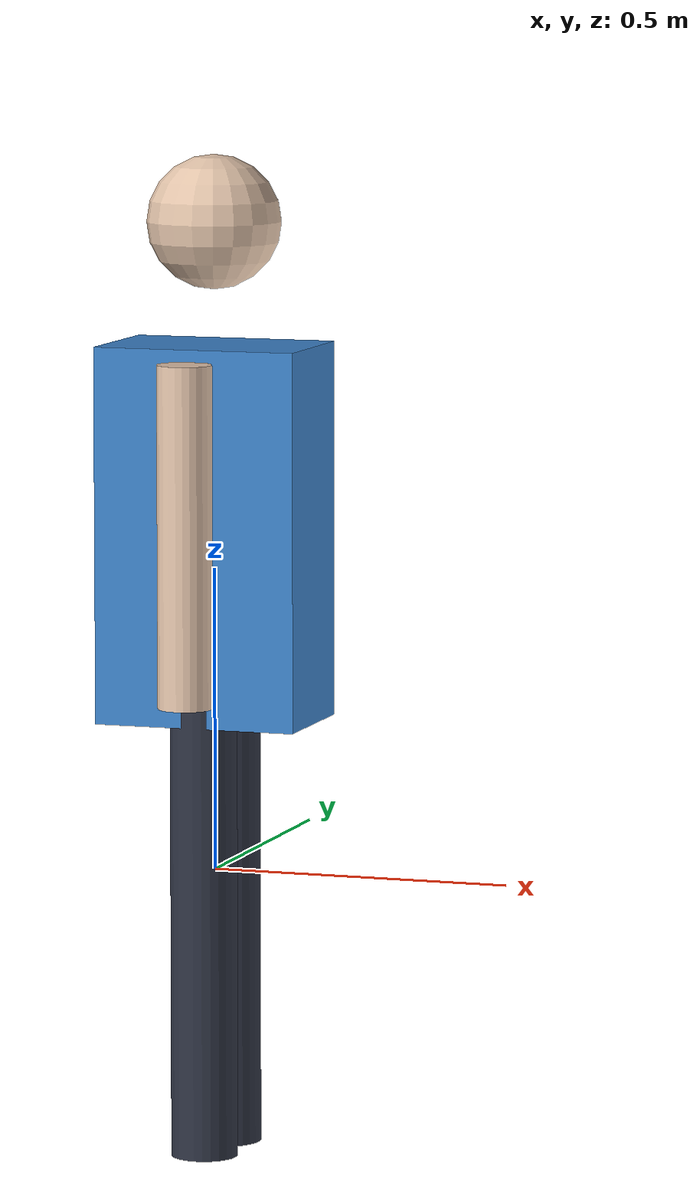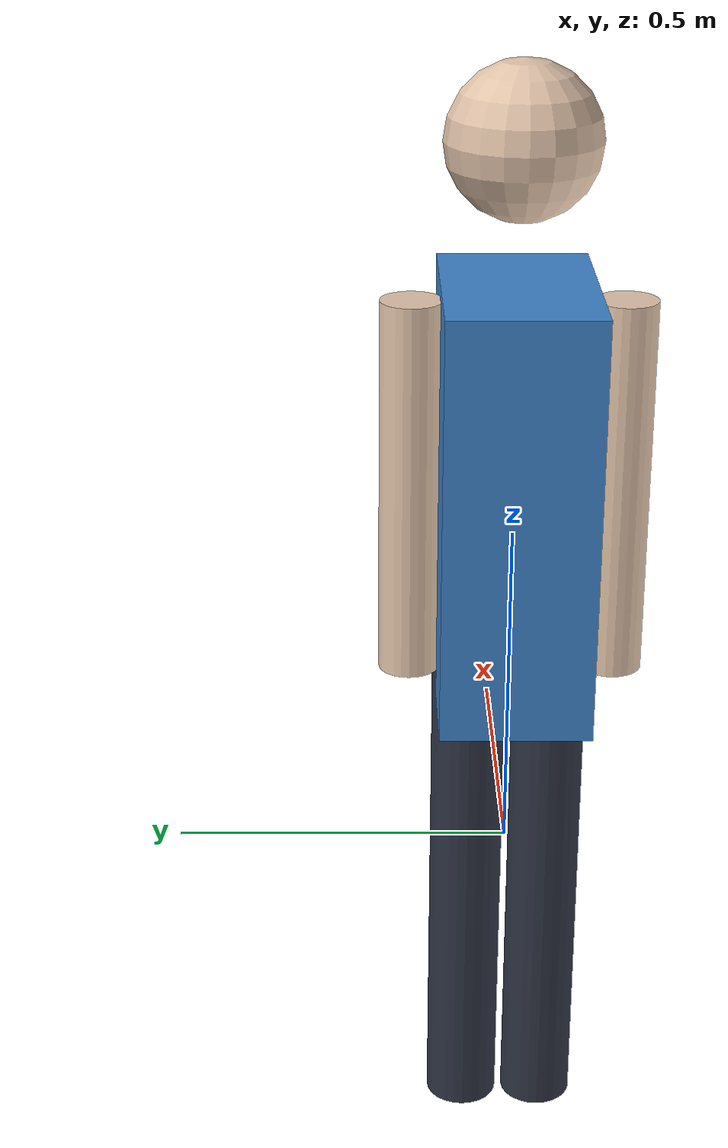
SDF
<?xml version="1.0" ?>
<sdf version="1.7">
  <model name="hmi_pedestrian">
    <pose>0 0 0 0 0 0</pose>

    <link name="torso_link">
      <gravity>false</gravity>
      <pose>0 0 0.56 0 0 0</pose>
      <inertial>
        <mass>8.0</mass>
        <inertia>
          <ixx>0.25</ixx>
          <iyy>0.20</iyy>
          <izz>0.18</izz>
          <ixy>0</ixy>
          <ixz>0</ixz>
          <iyz>0</iyz>
        </inertia>
      </inertial>
      <visual name="torso_visual">
        <geometry><box><size>0.34 0.22 0.62</size></box></geometry>
        <material><ambient>0.18 0.44 0.74 1</ambient><diffuse>0.24 0.52 0.80 1</diffuse></material>
      </visual>
    </link>

    <link name="head_link">
      <gravity>false</gravity>
      <pose>0 0 1.07 0 0 0</pose>
      <inertial>
        <mass>1.5</mass>
        <inertia>
          <ixx>0.02</ixx>
          <iyy>0.02</iyy>
          <izz>0.02</izz>
          <ixy>0</ixy>
          <ixz>0</ixz>
          <iyz>0</iyz>
        </inertia>
      </inertial>
      <visual name="head_visual">
        <geometry><sphere><radius>0.11</radius></sphere></geometry>
        <material><ambient>0.86 0.73 0.63 1</ambient><diffuse>0.90 0.78 0.68 1</diffuse></material>
      </visual>
    </link>

    <link name="left_leg_link">
      <gravity>false</gravity>
      <pose>0.00 0.06 0.29 0 0 0</pose>
      <inertial>
        <mass>2.0</mass>
        <inertia>
          <ixx>0.10</ixx>
          <iyy>0.03</iyy>
          <izz>0.10</izz>
          <ixy>0</ixy>
          <ixz>0</ixz>
          <iyz>0</iyz>
        </inertia>
      </inertial>
      <visual name="left_leg_visual">
        <pose>0 0 -0.38 0 0 0</pose>
        <geometry><cylinder><radius>0.055</radius><length>0.76</length></cylinder></geometry>
        <material><ambient>0.14 0.16 0.20 1</ambient><diffuse>0.18 0.20 0.26 1</diffuse></material>
      </visual>
    </link>

    <link name="right_leg_link">
      <gravity>false</gravity>
      <pose>0.00 -0.06 0.29 0 0 0</pose>
      <inertial>
        <mass>2.0</mass>
        <inertia>
          <ixx>0.10</ixx>
          <iyy>0.03</iyy>
          <izz>0.10</izz>
          <ixy>0</ixy>
          <ixz>0</ixz>
          <iyz>0</iyz>
        </inertia>
      </inertial>
      <visual name="right_leg_visual">
        <pose>0 0 -0.38 0 0 0</pose>
        <geometry><cylinder><radius>0.055</radius><length>0.76</length></cylinder></geometry>
        <material><ambient>0.14 0.16 0.20 1</ambient><diffuse>0.18 0.20 0.26 1</diffuse></material>
      </visual>
    </link>

    <link name="left_arm_link">
      <gravity>false</gravity>
      <pose>0.00 0.15 0.85 0 0 0</pose>
      <inertial>
        <mass>1.2</mass>
        <inertia>
          <ixx>0.05</ixx>
          <iyy>0.02</iyy>
          <izz>0.05</izz>
          <ixy>0</ixy>
          <ixz>0</ixz>
          <iyz>0</iyz>
        </inertia>
      </inertial>
      <visual name="left_arm_visual">
        <pose>0 0 -0.28 0 0 0</pose>
        <geometry><cylinder><radius>0.045</radius><length>0.56</length></cylinder></geometry>
        <material><ambient>0.86 0.73 0.63 1</ambient><diffuse>0.90 0.78 0.68 1</diffuse></material>
      </visual>
    </link>

    <link name="right_arm_link">
      <gravity>false</gravity>
      <pose>0.00 -0.15 0.85 0 0 0</pose>
      <inertial>
        <mass>1.2</mass>
        <inertia>
          <ixx>0.05</ixx>
          <iyy>0.02</iyy>
          <izz>0.05</izz>
          <ixy>0</ixy>
          <ixz>0</ixz>
          <iyz>0</iyz>
        </inertia>
      </inertial>
      <visual name="right_arm_visual">
        <pose>0 0 -0.28 0 0 0</pose>
        <geometry><cylinder><radius>0.045</radius><length>0.56</length></cylinder></geometry>
        <material><ambient>0.86 0.73 0.63 1</ambient><diffuse>0.90 0.78 0.68 1</diffuse></material>
      </visual>
    </link>

    <joint name="head_joint" type="fixed">
      <parent>torso_link</parent>
      <child>head_link</child>
    </joint>
    <joint name="left_leg_joint" type="revolute">
      <parent>torso_link</parent>
      <child>left_leg_link</child>
      <axis>
        <xyz>0 1 0</xyz>
        <limit><lower>-0.7</lower><upper>0.7</upper></limit>
        <dynamics><damping>1.0</damping></dynamics>
      </axis>
    </joint>
    <joint name="right_leg_joint" type="revolute">
      <parent>torso_link</parent>
      <child>right_leg_link</child>
      <axis>
        <xyz>0 1 0</xyz>
        <limit><lower>-0.7</lower><upper>0.7</upper></limit>
        <dynamics><damping>1.0</damping></dynamics>
      </axis>
    </joint>
    <joint name="left_arm_joint" type="revolute">
      <parent>torso_link</parent>
      <child>left_arm_link</child>
      <axis>
        <xyz>0 1 0</xyz>
        <limit><lower>-0.9</lower><upper>0.9</upper></limit>
        <dynamics><damping>0.8</damping></dynamics>
      </axis>
    </joint>
    <joint name="right_arm_joint" type="revolute">
      <parent>torso_link</parent>
      <child>right_arm_link</child>
      <axis>
        <xyz>0 1 0</xyz>
        <limit><lower>-0.9</lower><upper>0.9</upper></limit>
        <dynamics><damping>0.8</damping></dynamics>
      </axis>
    </joint>
    <plugin
      filename="gz-sim-joint-position-controller-system"
      name="gz::sim::systems::JointPositionController">
      <joint_name>left_arm_joint</joint_name>
      <topic>left_arm_joint_cmd</topic>
      <p_gain>12</p_gain>
      <d_gain>0.8</d_gain>
      <cmd_max>20</cmd_max>
      <cmd_min>-20</cmd_min>
    </plugin>
    <plugin
      filename="gz-sim-joint-position-controller-system"
      name="gz::sim::systems::JointPositionController">
      <joint_name>right_arm_joint</joint_name>
      <topic>right_arm_joint_cmd</topic>
      <p_gain>12</p_gain>
      <d_gain>0.8</d_gain>
      <cmd_max>20</cmd_max>
      <cmd_min>-20</cmd_min>
    </plugin>
    <plugin
      filename="gz-sim-joint-position-controller-system"
      name="gz::sim::systems::JointPositionController">
      <joint_name>left_leg_joint</joint_name>
      <topic>left_leg_joint_cmd</topic>
      <p_gain>14</p_gain>
      <d_gain>1.0</d_gain>
      <cmd_max>20</cmd_max>
      <cmd_min>-20</cmd_min>
    </plugin>
    <plugin
      filename="gz-sim-joint-position-controller-system"
      name="gz::sim::systems::JointPositionController">
      <joint_name>right_leg_joint</joint_name>
      <topic>right_leg_joint_cmd</topic>
      <p_gain>14</p_gain>
      <d_gain>1.0</d_gain>
      <cmd_max>20</cmd_max>
      <cmd_min>-20</cmd_min>
    </plugin>
  </model>
</sdf>
